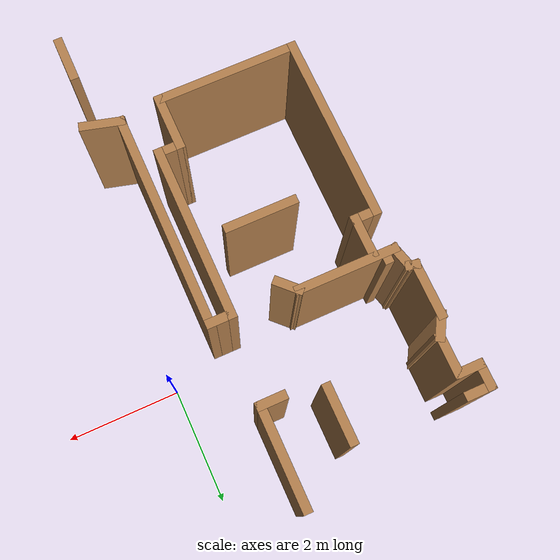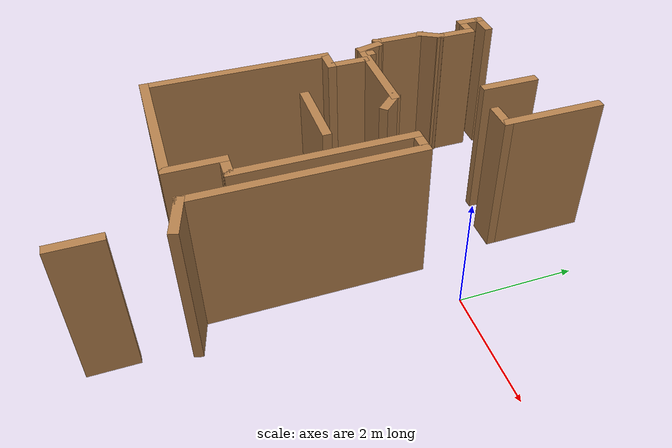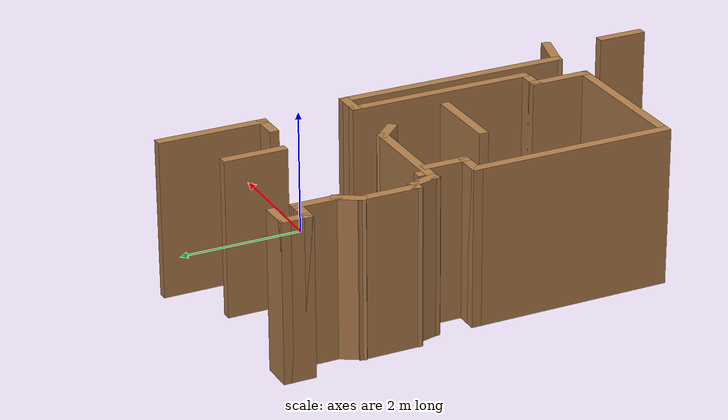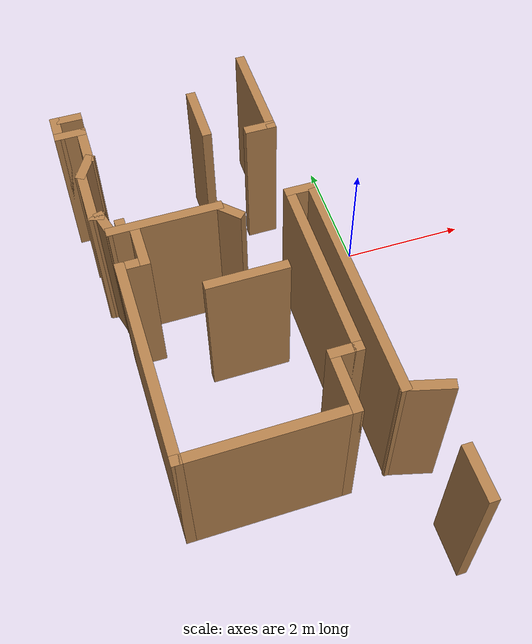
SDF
<sdf version="1.6">
 <model name="map_30">
  <link name="Wall_162">
   <pose>-1.09494 1.86618 0 0 0 -1.5708</pose>
   <visual name="Wall_162_Visual">
    <pose>0 0 1.25 0 -0 0</pose>
    <geometry><box><size>1.75 0.15 2.5</size></box></geometry>
    <material>
     <script><uri>file://media/materials/scripts/gazebo.material</uri><name>Gazebo/Wood</name></script>
     <ambient>1 1 1 1</ambient>
     <shader type="pixel"/>
    </material>
    <meta><layer>0</layer></meta>
   </visual>
   <collision name="Wall_162_Collision">
    <pose>0 0 1.25 0 -0 0</pose>
    <geometry><box><size>1.75 0.15 2.5</size></box></geometry>
    <surface>
     <friction>
      <ode><mu>1</mu><mu2>1</mu2><fdir1>0 0 0</fdir1><slip1>0</slip1><slip2>0</slip2></ode>
      <torsional>
       <coefficient>1</coefficient>
       <patch_radius>0</patch_radius>
       <surface_radius>0</surface_radius>
       <use_patch_radius>1</use_patch_radius>
       <ode><slip>0</slip></ode>
      </torsional>
     </friction>
     <bounce><restitution_coefficient>0</restitution_coefficient><threshold>1e+06</threshold></bounce>
     <contact>
      <collide_without_contact>0</collide_without_contact>
      <collide_without_contact_bitmask>1</collide_without_contact_bitmask>
      <collide_bitmask>1</collide_bitmask>
      <ode>
       <soft_cfm>0</soft_cfm>
       <soft_erp>0.2</soft_erp>
       <kp>1e+13</kp>
       <kd>1</kd>
       <max_vel>0.01</max_vel>
       <min_depth>0</min_depth>
      </ode>
      <bullet>
       <split_impulse>1</split_impulse>
       <split_impulse_penetration_threshold>-0.01</split_impulse_penetration_threshold>
       <soft_cfm>0</soft_cfm>
       <soft_erp>0.2</soft_erp>
       <kp>1e+13</kp>
       <kd>1</kd>
      </bullet>
     </contact>
    </surface>
   </collision>
  </link>
  <link name="Wall_163">
   <pose>-1.26994 1.06618 0 0 -0 3.14159</pose>
   <visual name="Wall_163_Visual">
    <pose>0 0 1.25 0 -0 0</pose>
    <geometry><box><size>0.5 0.15 2.5</size></box></geometry>
    <material>
     <script><uri>file://media/materials/scripts/gazebo.material</uri><name>Gazebo/Wood</name></script>
     <ambient>1 1 1 1</ambient>
     <shader type="pixel"/>
    </material>
    <meta><layer>0</layer></meta>
   </visual>
   <collision name="Wall_163_Collision">
    <pose>0 0 1.25 0 -0 0</pose>
    <geometry><box><size>0.5 0.15 2.5</size></box></geometry>
    <surface>
     <friction>
      <ode><mu>1</mu><mu2>1</mu2><fdir1>0 0 0</fdir1><slip1>0</slip1><slip2>0</slip2></ode>
      <torsional>
       <coefficient>1</coefficient>
       <patch_radius>0</patch_radius>
       <surface_radius>0</surface_radius>
       <use_patch_radius>1</use_patch_radius>
       <ode><slip>0</slip></ode>
      </torsional>
     </friction>
     <bounce><restitution_coefficient>0</restitution_coefficient><threshold>1e+06</threshold></bounce>
     <contact>
      <collide_without_contact>0</collide_without_contact>
      <collide_without_contact_bitmask>1</collide_without_contact_bitmask>
      <collide_bitmask>1</collide_bitmask>
      <ode>
       <soft_cfm>0</soft_cfm>
       <soft_erp>0.2</soft_erp>
       <kp>1e+13</kp>
       <kd>1</kd>
       <max_vel>0.01</max_vel>
       <min_depth>0</min_depth>
      </ode>
      <bullet>
       <split_impulse>1</split_impulse>
       <split_impulse_penetration_threshold>-0.01</split_impulse_penetration_threshold>
       <soft_cfm>0</soft_cfm>
       <soft_erp>0.2</soft_erp>
       <kp>1e+13</kp>
       <kd>1</kd>
      </bullet>
     </contact>
    </surface>
   </collision>
  </link>
  <link name="Wall_187">
   <pose>-2.10506 1.64815 0 0 -0 1.5708</pose>
   <visual name="Wall_187_Visual">
    <pose>0 0 1.25 0 -0 0</pose>
    <geometry><box><size>1 0.15 2.5</size></box></geometry>
    <material>
     <script><uri>file://media/materials/scripts/gazebo.material</uri><name>Gazebo/Wood</name></script>
     <ambient>1 1 1 1</ambient>
     <shader type="pixel"/>
    </material>
    <meta><layer>0</layer></meta>
   </visual>
   <collision name="Wall_187_Collision">
    <pose>0 0 1.25 0 -0 0</pose>
    <geometry><box><size>1 0.15 2.5</size></box></geometry>
    <surface>
     <friction>
      <ode><mu>1</mu><mu2>1</mu2><fdir1>0 0 0</fdir1><slip1>0</slip1><slip2>0</slip2></ode>
      <torsional>
       <coefficient>1</coefficient>
       <patch_radius>0</patch_radius>
       <surface_radius>0</surface_radius>
       <use_patch_radius>1</use_patch_radius>
       <ode><slip>0</slip></ode>
      </torsional>
     </friction>
     <bounce><restitution_coefficient>0</restitution_coefficient><threshold>1e+06</threshold></bounce>
     <contact>
      <collide_without_contact>0</collide_without_contact>
      <collide_without_contact_bitmask>1</collide_without_contact_bitmask>
      <collide_bitmask>1</collide_bitmask>
      <ode>
       <soft_cfm>0</soft_cfm>
       <soft_erp>0.2</soft_erp>
       <kp>1e+13</kp>
       <kd>1</kd>
       <max_vel>0.01</max_vel>
       <min_depth>0</min_depth>
      </ode>
      <bullet>
       <split_impulse>1</split_impulse>
       <split_impulse_penetration_threshold>-0.01</split_impulse_penetration_threshold>
       <soft_cfm>0</soft_cfm>
       <soft_erp>0.2</soft_erp>
       <kp>1e+13</kp>
       <kd>1</kd>
      </bullet>
     </contact>
    </surface>
   </collision>
  </link>
  <link name="Wall_189">
   <pose>-2.30374 -1.6337 0 0 -0 3.14159</pose>
   <visual name="Wall_189_Visual">
    <pose>0 0 1.25 0 -0 0</pose>
    <geometry><box><size>1.25 0.15 2.5</size></box></geometry>
    <material>
     <script><uri>file://media/materials/scripts/gazebo.material</uri><name>Gazebo/Wood</name></script>
     <ambient>1 1 1 1</ambient>
     <shader type="pixel"/>
    </material>
    <meta><layer>0</layer></meta>
   </visual>
   <collision name="Wall_189_Collision">
    <pose>0 0 1.25 0 -0 0</pose>
    <geometry><box><size>1.25 0.15 2.5</size></box></geometry>
    <surface>
     <friction>
      <ode><mu>1</mu><mu2>1</mu2><fdir1>0 0 0</fdir1><slip1>0</slip1><slip2>0</slip2></ode>
      <torsional>
       <coefficient>1</coefficient>
       <patch_radius>0</patch_radius>
       <surface_radius>0</surface_radius>
       <use_patch_radius>1</use_patch_radius>
       <ode><slip>0</slip></ode>
      </torsional>
     </friction>
     <bounce><restitution_coefficient>0</restitution_coefficient><threshold>1e+06</threshold></bounce>
     <contact>
      <collide_without_contact>0</collide_without_contact>
      <collide_without_contact_bitmask>1</collide_without_contact_bitmask>
      <collide_bitmask>1</collide_bitmask>
      <ode>
       <soft_cfm>0</soft_cfm>
       <soft_erp>0.2</soft_erp>
       <kp>1e+13</kp>
       <kd>1</kd>
       <max_vel>0.01</max_vel>
       <min_depth>0</min_depth>
      </ode>
      <bullet>
       <split_impulse>1</split_impulse>
       <split_impulse_penetration_threshold>-0.01</split_impulse_penetration_threshold>
       <soft_cfm>0</soft_cfm>
       <soft_erp>0.2</soft_erp>
       <kp>1e+13</kp>
       <kd>1</kd>
      </bullet>
     </contact>
    </surface>
   </collision>
  </link>
  <link name="Wall_26">
   <pose>-4.13006 2.17315 0 0 -0 3.14159</pose>
   <visual name="Wall_26_Visual">
    <pose>0 0 1.25 0 -0 0</pose>
    <geometry><box><size>0.5 0.15 2.5</size></box></geometry>
    <material>
     <script><uri>file://media/materials/scripts/gazebo.material</uri><name>Gazebo/Wood</name></script>
     <ambient>1 1 1 1</ambient>
     <shader type="pixel"/>
    </material>
    <meta><layer>0</layer></meta>
   </visual>
   <collision name="Wall_26_Collision">
    <pose>0 0 1.25 0 -0 0</pose>
    <geometry><box><size>0.5 0.15 2.5</size></box></geometry>
    <surface>
     <friction>
      <ode><mu>1</mu><mu2>1</mu2><fdir1>0 0 0</fdir1><slip1>0</slip1><slip2>0</slip2></ode>
      <torsional>
       <coefficient>1</coefficient>
       <patch_radius>0</patch_radius>
       <surface_radius>0</surface_radius>
       <use_patch_radius>1</use_patch_radius>
       <ode><slip>0</slip></ode>
      </torsional>
     </friction>
     <bounce><restitution_coefficient>0</restitution_coefficient><threshold>1e+06</threshold></bounce>
     <contact>
      <collide_without_contact>0</collide_without_contact>
      <collide_without_contact_bitmask>1</collide_without_contact_bitmask>
      <collide_bitmask>1</collide_bitmask>
      <ode>
       <soft_cfm>0</soft_cfm>
       <soft_erp>0.2</soft_erp>
       <kp>1e+13</kp>
       <kd>1</kd>
       <max_vel>0.01</max_vel>
       <min_depth>0</min_depth>
      </ode>
      <bullet>
       <split_impulse>1</split_impulse>
       <split_impulse_penetration_threshold>-0.01</split_impulse_penetration_threshold>
       <soft_cfm>0</soft_cfm>
       <soft_erp>0.2</soft_erp>
       <kp>1e+13</kp>
       <kd>1</kd>
      </bullet>
     </contact>
    </surface>
   </collision>
  </link>
  <link name="Wall_27">
   <pose>-4.30506 1.99815 0 0 0 -1.5708</pose>
   <visual name="Wall_27_Visual">
    <pose>0 0 1.25 0 -0 0</pose>
    <geometry><box><size>0.5 0.15 2.5</size></box></geometry>
    <material>
     <script><uri>file://media/materials/scripts/gazebo.material</uri><name>Gazebo/Wood</name></script>
     <ambient>1 1 1 1</ambient>
     <shader type="pixel"/>
    </material>
    <meta><layer>0</layer></meta>
   </visual>
   <collision name="Wall_27_Collision">
    <pose>0 0 1.25 0 -0 0</pose>
    <geometry><box><size>0.5 0.15 2.5</size></box></geometry>
    <surface>
     <friction>
      <ode><mu>1</mu><mu2>1</mu2><fdir1>0 0 0</fdir1><slip1>0</slip1><slip2>0</slip2></ode>
      <torsional>
       <coefficient>1</coefficient>
       <patch_radius>0</patch_radius>
       <surface_radius>0</surface_radius>
       <use_patch_radius>1</use_patch_radius>
       <ode><slip>0</slip></ode>
      </torsional>
     </friction>
     <bounce><restitution_coefficient>0</restitution_coefficient><threshold>1e+06</threshold></bounce>
     <contact>
      <collide_without_contact>0</collide_without_contact>
      <collide_without_contact_bitmask>1</collide_without_contact_bitmask>
      <collide_bitmask>1</collide_bitmask>
      <ode>
       <soft_cfm>0</soft_cfm>
       <soft_erp>0.2</soft_erp>
       <kp>1e+13</kp>
       <kd>1</kd>
       <max_vel>0.01</max_vel>
       <min_depth>0</min_depth>
      </ode>
      <bullet>
       <split_impulse>1</split_impulse>
       <split_impulse_penetration_threshold>-0.01</split_impulse_penetration_threshold>
       <soft_cfm>0</soft_cfm>
       <soft_erp>0.2</soft_erp>
       <kp>1e+13</kp>
       <kd>1</kd>
      </bullet>
     </contact>
    </surface>
   </collision>
  </link>
  <link name="Wall_28">
   <pose>-4.13006 1.82315 0 0 -0 0</pose>
   <visual name="Wall_28_Visual">
    <pose>0 0 1.25 0 -0 0</pose>
    <geometry><box><size>0.5 0.15 2.5</size></box></geometry>
    <material>
     <script><uri>file://media/materials/scripts/gazebo.material</uri><name>Gazebo/Wood</name></script>
     <ambient>1 1 1 1</ambient>
     <shader type="pixel"/>
    </material>
    <meta><layer>0</layer></meta>
   </visual>
   <collision name="Wall_28_Collision">
    <pose>0 0 1.25 0 -0 0</pose>
    <geometry><box><size>0.5 0.15 2.5</size></box></geometry>
    <surface>
     <friction>
      <ode><mu>1</mu><mu2>1</mu2><fdir1>0 0 0</fdir1><slip1>0</slip1><slip2>0</slip2></ode>
      <torsional>
       <coefficient>1</coefficient>
       <patch_radius>0</patch_radius>
       <surface_radius>0</surface_radius>
       <use_patch_radius>1</use_patch_radius>
       <ode><slip>0</slip></ode>
      </torsional>
     </friction>
     <bounce><restitution_coefficient>0</restitution_coefficient><threshold>1e+06</threshold></bounce>
     <contact>
      <collide_without_contact>0</collide_without_contact>
      <collide_without_contact_bitmask>1</collide_without_contact_bitmask>
      <collide_bitmask>1</collide_bitmask>
      <ode>
       <soft_cfm>0</soft_cfm>
       <soft_erp>0.2</soft_erp>
       <kp>1e+13</kp>
       <kd>1</kd>
       <max_vel>0.01</max_vel>
       <min_depth>0</min_depth>
      </ode>
      <bullet>
       <split_impulse>1</split_impulse>
       <split_impulse_penetration_threshold>-0.01</split_impulse_penetration_threshold>
       <soft_cfm>0</soft_cfm>
       <soft_erp>0.2</soft_erp>
       <kp>1e+13</kp>
       <kd>1</kd>
      </bullet>
     </contact>
    </surface>
   </collision>
  </link>
  <link name="Wall_29">
   <pose>-3.95506 1.52315 0 0 0 -1.5708</pose>
   <visual name="Wall_29_Visual">
    <pose>0 0 1.25 0 -0 0</pose>
    <geometry><box><size>0.75 0.15 2.5</size></box></geometry>
    <material>
     <script><uri>file://media/materials/scripts/gazebo.material</uri><name>Gazebo/Wood</name></script>
     <ambient>1 1 1 1</ambient>
     <shader type="pixel"/>
    </material>
    <meta><layer>0</layer></meta>
   </visual>
   <collision name="Wall_29_Collision">
    <pose>0 0 1.25 0 -0 0</pose>
    <geometry><box><size>0.75 0.15 2.5</size></box></geometry>
    <surface>
     <friction>
      <ode><mu>1</mu><mu2>1</mu2><fdir1>0 0 0</fdir1><slip1>0</slip1><slip2>0</slip2></ode>
      <torsional>
       <coefficient>1</coefficient>
       <patch_radius>0</patch_radius>
       <surface_radius>0</surface_radius>
       <use_patch_radius>1</use_patch_radius>
       <ode><slip>0</slip></ode>
      </torsional>
     </friction>
     <bounce><restitution_coefficient>0</restitution_coefficient><threshold>1e+06</threshold></bounce>
     <contact>
      <collide_without_contact>0</collide_without_contact>
      <collide_without_contact_bitmask>1</collide_without_contact_bitmask>
      <collide_bitmask>1</collide_bitmask>
      <ode>
       <soft_cfm>0</soft_cfm>
       <soft_erp>0.2</soft_erp>
       <kp>1e+13</kp>
       <kd>1</kd>
       <max_vel>0.01</max_vel>
       <min_depth>0</min_depth>
      </ode>
      <bullet>
       <split_impulse>1</split_impulse>
       <split_impulse_penetration_threshold>-0.01</split_impulse_penetration_threshold>
       <soft_cfm>0</soft_cfm>
       <soft_erp>0.2</soft_erp>
       <kp>1e+13</kp>
       <kd>1</kd>
      </bullet>
     </contact>
    </surface>
   </collision>
  </link>
  <link name="Wall_30">
   <pose>-4.04256 1.07159 0 0 0 -2.0944</pose>
   <visual name="Wall_30_Visual">
    <pose>0 0 1.25 0 -0 0</pose>
    <geometry><box><size>0.5 0.15 2.5</size></box></geometry>
    <material>
     <script><uri>file://media/materials/scripts/gazebo.material</uri><name>Gazebo/Wood</name></script>
     <ambient>1 1 1 1</ambient>
     <shader type="pixel"/>
    </material>
    <meta><layer>0</layer></meta>
   </visual>
   <collision name="Wall_30_Collision">
    <pose>0 0 1.25 0 -0 0</pose>
    <geometry><box><size>0.5 0.15 2.5</size></box></geometry>
    <surface>
     <friction>
      <ode><mu>1</mu><mu2>1</mu2><fdir1>0 0 0</fdir1><slip1>0</slip1><slip2>0</slip2></ode>
      <torsional>
       <coefficient>1</coefficient>
       <patch_radius>0</patch_radius>
       <surface_radius>0</surface_radius>
       <use_patch_radius>1</use_patch_radius>
       <ode><slip>0</slip></ode>
      </torsional>
     </friction>
     <bounce><restitution_coefficient>0</restitution_coefficient><threshold>1e+06</threshold></bounce>
     <contact>
      <collide_without_contact>0</collide_without_contact>
      <collide_without_contact_bitmask>1</collide_without_contact_bitmask>
      <collide_bitmask>1</collide_bitmask>
      <ode>
       <soft_cfm>0</soft_cfm>
       <soft_erp>0.2</soft_erp>
       <kp>1e+13</kp>
       <kd>1</kd>
       <max_vel>0.01</max_vel>
       <min_depth>0</min_depth>
      </ode>
      <bullet>
       <split_impulse>1</split_impulse>
       <split_impulse_penetration_threshold>-0.01</split_impulse_penetration_threshold>
       <soft_cfm>0</soft_cfm>
       <soft_erp>0.2</soft_erp>
       <kp>1e+13</kp>
       <kd>1</kd>
      </bullet>
     </contact>
    </surface>
   </collision>
  </link>
  <link name="Wall_33">
   <pose>-3.78006 -0.179962 0 0 -0 0</pose>
   <visual name="Wall_33_Visual">
    <pose>0 0 1.25 0 -0 0</pose>
    <geometry><box><size>0.15 0.15 2.5</size></box></geometry>
    <material>
     <script><uri>file://media/materials/scripts/gazebo.material</uri><name>Gazebo/Wood</name></script>
     <ambient>1 1 1 1</ambient>
     <shader type="pixel"/>
    </material>
    <meta><layer>0</layer></meta>
   </visual>
   <collision name="Wall_33_Collision">
    <pose>0 0 1.25 0 -0 0</pose>
    <geometry><box><size>0.15 0.15 2.5</size></box></geometry>
    <surface>
     <friction>
      <ode><mu>1</mu><mu2>1</mu2><fdir1>0 0 0</fdir1><slip1>0</slip1><slip2>0</slip2></ode>
      <torsional>
       <coefficient>1</coefficient>
       <patch_radius>0</patch_radius>
       <surface_radius>0</surface_radius>
       <use_patch_radius>1</use_patch_radius>
       <ode><slip>0</slip></ode>
      </torsional>
     </friction>
     <bounce><restitution_coefficient>0</restitution_coefficient><threshold>1e+06</threshold></bounce>
     <contact>
      <collide_without_contact>0</collide_without_contact>
      <collide_without_contact_bitmask>1</collide_without_contact_bitmask>
      <collide_bitmask>1</collide_bitmask>
      <ode>
       <soft_cfm>0</soft_cfm>
       <soft_erp>0.2</soft_erp>
       <kp>1e+13</kp>
       <kd>1</kd>
       <max_vel>0.01</max_vel>
       <min_depth>0</min_depth>
      </ode>
      <bullet>
       <split_impulse>1</split_impulse>
       <split_impulse_penetration_threshold>-0.01</split_impulse_penetration_threshold>
       <soft_cfm>0</soft_cfm>
       <soft_erp>0.2</soft_erp>
       <kp>1e+13</kp>
       <kd>1</kd>
      </bullet>
     </contact>
    </surface>
   </collision>
  </link>
  <link name="Wall_35">
   <pose>-4.13006 0.495038 0 0 0 -1.5708</pose>
   <visual name="Wall_35_Visual">
    <pose>0 0 1.25 0 -0 0</pose>
    <geometry><box><size>1 0.15 2.5</size></box></geometry>
    <material>
     <script><uri>file://media/materials/scripts/gazebo.material</uri><name>Gazebo/Wood</name></script>
     <ambient>1 1 1 1</ambient>
     <shader type="pixel"/>
    </material>
    <meta><layer>0</layer></meta>
   </visual>
   <collision name="Wall_35_Collision">
    <pose>0 0 1.25 0 -0 0</pose>
    <geometry><box><size>1 0.15 2.5</size></box></geometry>
    <surface>
     <friction>
      <ode><mu>1</mu><mu2>1</mu2><fdir1>0 0 0</fdir1><slip1>0</slip1><slip2>0</slip2></ode>
      <torsional>
       <coefficient>1</coefficient>
       <patch_radius>0</patch_radius>
       <surface_radius>0</surface_radius>
       <use_patch_radius>1</use_patch_radius>
       <ode><slip>0</slip></ode>
      </torsional>
     </friction>
     <bounce><restitution_coefficient>0</restitution_coefficient><threshold>1e+06</threshold></bounce>
     <contact>
      <collide_without_contact>0</collide_without_contact>
      <collide_without_contact_bitmask>1</collide_without_contact_bitmask>
      <collide_bitmask>1</collide_bitmask>
      <ode>
       <soft_cfm>0</soft_cfm>
       <soft_erp>0.2</soft_erp>
       <kp>1e+13</kp>
       <kd>1</kd>
       <max_vel>0.01</max_vel>
       <min_depth>0</min_depth>
      </ode>
      <bullet>
       <split_impulse>1</split_impulse>
       <split_impulse_penetration_threshold>-0.01</split_impulse_penetration_threshold>
       <soft_cfm>0</soft_cfm>
       <soft_erp>0.2</soft_erp>
       <kp>1e+13</kp>
       <kd>1</kd>
      </bullet>
     </contact>
    </surface>
   </collision>
  </link>
  <link name="Wall_36">
   <pose>-4.08176 0.057097 0 0 0 -0.261799</pose>
   <visual name="Wall_36_Visual">
    <pose>0 0 1.25 0 -0 0</pose>
    <geometry><box><size>0.25 0.15 2.5</size></box></geometry>
    <material>
     <script><uri>file://media/materials/scripts/gazebo.material</uri><name>Gazebo/Wood</name></script>
     <ambient>1 1 1 1</ambient>
     <shader type="pixel"/>
    </material>
    <meta><layer>0</layer></meta>
   </visual>
   <collision name="Wall_36_Collision">
    <pose>0 0 1.25 0 -0 0</pose>
    <geometry><box><size>0.25 0.15 2.5</size></box></geometry>
    <surface>
     <friction>
      <ode><mu>1</mu><mu2>1</mu2><fdir1>0 0 0</fdir1><slip1>0</slip1><slip2>0</slip2></ode>
      <torsional>
       <coefficient>1</coefficient>
       <patch_radius>0</patch_radius>
       <surface_radius>0</surface_radius>
       <use_patch_radius>1</use_patch_radius>
       <ode><slip>0</slip></ode>
      </torsional>
     </friction>
     <bounce><restitution_coefficient>0</restitution_coefficient><threshold>1e+06</threshold></bounce>
     <contact>
      <collide_without_contact>0</collide_without_contact>
      <collide_without_contact_bitmask>1</collide_without_contact_bitmask>
      <collide_bitmask>1</collide_bitmask>
      <ode>
       <soft_cfm>0</soft_cfm>
       <soft_erp>0.2</soft_erp>
       <kp>1e+13</kp>
       <kd>1</kd>
       <max_vel>0.01</max_vel>
       <min_depth>0</min_depth>
      </ode>
      <bullet>
       <split_impulse>1</split_impulse>
       <split_impulse_penetration_threshold>-0.01</split_impulse_penetration_threshold>
       <soft_cfm>0</soft_cfm>
       <soft_erp>0.2</soft_erp>
       <kp>1e+13</kp>
       <kd>1</kd>
      </bullet>
     </contact>
    </surface>
   </collision>
  </link>
  <link name="Wall_37">
   <pose>-3.98817 -0.124881 0 0 0 -1.309</pose>
   <visual name="Wall_37_Visual">
    <pose>0 0 1.25 0 -0 0</pose>
    <geometry><box><size>0.5 0.15 2.5</size></box></geometry>
    <material>
     <script><uri>file://media/materials/scripts/gazebo.material</uri><name>Gazebo/Wood</name></script>
     <ambient>1 1 1 1</ambient>
     <shader type="pixel"/>
    </material>
    <meta><layer>0</layer></meta>
   </visual>
   <collision name="Wall_37_Collision">
    <pose>0 0 1.25 0 -0 0</pose>
    <geometry><box><size>0.5 0.15 2.5</size></box></geometry>
    <surface>
     <friction>
      <ode><mu>1</mu><mu2>1</mu2><fdir1>0 0 0</fdir1><slip1>0</slip1><slip2>0</slip2></ode>
      <torsional>
       <coefficient>1</coefficient>
       <patch_radius>0</patch_radius>
       <surface_radius>0</surface_radius>
       <use_patch_radius>1</use_patch_radius>
       <ode><slip>0</slip></ode>
      </torsional>
     </friction>
     <bounce><restitution_coefficient>0</restitution_coefficient><threshold>1e+06</threshold></bounce>
     <contact>
      <collide_without_contact>0</collide_without_contact>
      <collide_without_contact_bitmask>1</collide_without_contact_bitmask>
      <collide_bitmask>1</collide_bitmask>
      <ode>
       <soft_cfm>0</soft_cfm>
       <soft_erp>0.2</soft_erp>
       <kp>1e+13</kp>
       <kd>1</kd>
       <max_vel>0.01</max_vel>
       <min_depth>0</min_depth>
      </ode>
      <bullet>
       <split_impulse>1</split_impulse>
       <split_impulse_penetration_threshold>-0.01</split_impulse_penetration_threshold>
       <soft_cfm>0</soft_cfm>
       <soft_erp>0.2</soft_erp>
       <kp>1e+13</kp>
       <kd>1</kd>
      </bullet>
     </contact>
    </surface>
   </collision>
  </link>
  <link name="Wall_38">
   <pose>-3.14288 -0.293918 0 0 -0 0</pose>
   <visual name="Wall_38_Visual">
    <pose>0 0 1.25 0 -0 0</pose>
    <geometry><box><size>1.75 0.15 2.5</size></box></geometry>
    <material>
     <script><uri>file://media/materials/scripts/gazebo.material</uri><name>Gazebo/Wood</name></script>
     <ambient>1 1 1 1</ambient>
     <shader type="pixel"/>
    </material>
    <meta><layer>0</layer></meta>
   </visual>
   <collision name="Wall_38_Collision">
    <pose>0 0 1.25 0 -0 0</pose>
    <geometry><box><size>1.75 0.15 2.5</size></box></geometry>
    <surface>
     <friction>
      <ode><mu>1</mu><mu2>1</mu2><fdir1>0 0 0</fdir1><slip1>0</slip1><slip2>0</slip2></ode>
      <torsional>
       <coefficient>1</coefficient>
       <patch_radius>0</patch_radius>
       <surface_radius>0</surface_radius>
       <use_patch_radius>1</use_patch_radius>
       <ode><slip>0</slip></ode>
      </torsional>
     </friction>
     <bounce><restitution_coefficient>0</restitution_coefficient><threshold>1e+06</threshold></bounce>
     <contact>
      <collide_without_contact>0</collide_without_contact>
      <collide_without_contact_bitmask>1</collide_without_contact_bitmask>
      <collide_bitmask>1</collide_bitmask>
      <ode>
       <soft_cfm>0</soft_cfm>
       <soft_erp>0.2</soft_erp>
       <kp>1e+13</kp>
       <kd>1</kd>
       <max_vel>0.01</max_vel>
       <min_depth>0</min_depth>
      </ode>
      <bullet>
       <split_impulse>1</split_impulse>
       <split_impulse_penetration_threshold>-0.01</split_impulse_penetration_threshold>
       <soft_cfm>0</soft_cfm>
       <soft_erp>0.2</soft_erp>
       <kp>1e+13</kp>
       <kd>1</kd>
      </bullet>
     </contact>
    </surface>
   </collision>
  </link>
  <link name="Wall_39">
   <pose>-2.21914 -0.417661 0 0 0 -0.785398</pose>
   <visual name="Wall_39_Visual">
    <pose>0 0 1.25 0 -0 0</pose>
    <geometry><box><size>0.5 0.15 2.5</size></box></geometry>
    <material>
     <script><uri>file://media/materials/scripts/gazebo.material</uri><name>Gazebo/Wood</name></script>
     <ambient>1 1 1 1</ambient>
     <shader type="pixel"/>
    </material>
    <meta><layer>0</layer></meta>
   </visual>
   <collision name="Wall_39_Collision">
    <pose>0 0 1.25 0 -0 0</pose>
    <geometry><box><size>0.5 0.15 2.5</size></box></geometry>
    <surface>
     <friction>
      <ode><mu>1</mu><mu2>1</mu2><fdir1>0 0 0</fdir1><slip1>0</slip1><slip2>0</slip2></ode>
      <torsional>
       <coefficient>1</coefficient>
       <patch_radius>0</patch_radius>
       <surface_radius>0</surface_radius>
       <use_patch_radius>1</use_patch_radius>
       <ode><slip>0</slip></ode>
      </torsional>
     </friction>
     <bounce><restitution_coefficient>0</restitution_coefficient><threshold>1e+06</threshold></bounce>
     <contact>
      <collide_without_contact>0</collide_without_contact>
      <collide_without_contact_bitmask>1</collide_without_contact_bitmask>
      <collide_bitmask>1</collide_bitmask>
      <ode>
       <soft_cfm>0</soft_cfm>
       <soft_erp>0.2</soft_erp>
       <kp>1e+13</kp>
       <kd>1</kd>
       <max_vel>0.01</max_vel>
       <min_depth>0</min_depth>
      </ode>
      <bullet>
       <split_impulse>1</split_impulse>
       <split_impulse_penetration_threshold>-0.01</split_impulse_penetration_threshold>
       <soft_cfm>0</soft_cfm>
       <soft_erp>0.2</soft_erp>
       <kp>1e+13</kp>
       <kd>1</kd>
      </bullet>
     </contact>
    </surface>
   </collision>
  </link>
  <link name="Wall_42">
   <pose>-3.60419 -0.661521 0 0 0 -1.5708</pose>
   <visual name="Wall_42_Visual">
    <pose>0 0 1.25 0 -0 0</pose>
    <geometry><box><size>0.75 0.15 2.5</size></box></geometry>
    <material>
     <script><uri>file://media/materials/scripts/gazebo.material</uri><name>Gazebo/Wood</name></script>
     <ambient>1 1 1 1</ambient>
     <shader type="pixel"/>
    </material>
    <meta><layer>0</layer></meta>
   </visual>
   <collision name="Wall_42_Collision">
    <pose>0 0 1.25 0 -0 0</pose>
    <geometry><box><size>0.75 0.15 2.5</size></box></geometry>
    <surface>
     <friction>
      <ode><mu>1</mu><mu2>1</mu2><fdir1>0 0 0</fdir1><slip1>0</slip1><slip2>0</slip2></ode>
      <torsional>
       <coefficient>1</coefficient>
       <patch_radius>0</patch_radius>
       <surface_radius>0</surface_radius>
       <use_patch_radius>1</use_patch_radius>
       <ode><slip>0</slip></ode>
      </torsional>
     </friction>
     <bounce><restitution_coefficient>0</restitution_coefficient><threshold>1e+06</threshold></bounce>
     <contact>
      <collide_without_contact>0</collide_without_contact>
      <collide_without_contact_bitmask>1</collide_without_contact_bitmask>
      <collide_bitmask>1</collide_bitmask>
      <ode>
       <soft_cfm>0</soft_cfm>
       <soft_erp>0.2</soft_erp>
       <kp>1e+13</kp>
       <kd>1</kd>
       <max_vel>0.01</max_vel>
       <min_depth>0</min_depth>
      </ode>
      <bullet>
       <split_impulse>1</split_impulse>
       <split_impulse_penetration_threshold>-0.01</split_impulse_penetration_threshold>
       <soft_cfm>0</soft_cfm>
       <soft_erp>0.2</soft_erp>
       <kp>1e+13</kp>
       <kd>1</kd>
      </bullet>
     </contact>
    </surface>
   </collision>
  </link>
  <link name="Wall_43">
   <pose>-3.77919 -0.961521 0 0 -0 3.14159</pose>
   <visual name="Wall_43_Visual">
    <pose>0 0 1.25 0 -0 0</pose>
    <geometry><box><size>0.5 0.15 2.5</size></box></geometry>
    <material>
     <script><uri>file://media/materials/scripts/gazebo.material</uri><name>Gazebo/Wood</name></script>
     <ambient>1 1 1 1</ambient>
     <shader type="pixel"/>
    </material>
    <meta><layer>0</layer></meta>
   </visual>
   <collision name="Wall_43_Collision">
    <pose>0 0 1.25 0 -0 0</pose>
    <geometry><box><size>0.5 0.15 2.5</size></box></geometry>
    <surface>
     <friction>
      <ode><mu>1</mu><mu2>1</mu2><fdir1>0 0 0</fdir1><slip1>0</slip1><slip2>0</slip2></ode>
      <torsional>
       <coefficient>1</coefficient>
       <patch_radius>0</patch_radius>
       <surface_radius>0</surface_radius>
       <use_patch_radius>1</use_patch_radius>
       <ode><slip>0</slip></ode>
      </torsional>
     </friction>
     <bounce><restitution_coefficient>0</restitution_coefficient><threshold>1e+06</threshold></bounce>
     <contact>
      <collide_without_contact>0</collide_without_contact>
      <collide_without_contact_bitmask>1</collide_without_contact_bitmask>
      <collide_bitmask>1</collide_bitmask>
      <ode>
       <soft_cfm>0</soft_cfm>
       <soft_erp>0.2</soft_erp>
       <kp>1e+13</kp>
       <kd>1</kd>
       <max_vel>0.01</max_vel>
       <min_depth>0</min_depth>
      </ode>
      <bullet>
       <split_impulse>1</split_impulse>
       <split_impulse_penetration_threshold>-0.01</split_impulse_penetration_threshold>
       <soft_cfm>0</soft_cfm>
       <soft_erp>0.2</soft_erp>
       <kp>1e+13</kp>
       <kd>1</kd>
      </bullet>
     </contact>
    </surface>
   </collision>
  </link>
  <link name="Wall_44">
   <pose>-3.95419 -2.51152 0 0 0 -1.5708</pose>
   <visual name="Wall_44_Visual">
    <pose>0 0 1.25 0 -0 0</pose>
    <geometry><box><size>3.25 0.15 2.5</size></box></geometry>
    <material>
     <script><uri>file://media/materials/scripts/gazebo.material</uri><name>Gazebo/Wood</name></script>
     <ambient>1 1 1 1</ambient>
     <shader type="pixel"/>
    </material>
    <meta><layer>0</layer></meta>
   </visual>
   <collision name="Wall_44_Collision">
    <pose>0 0 1.25 0 -0 0</pose>
    <geometry><box><size>3.25 0.15 2.5</size></box></geometry>
    <surface>
     <friction>
      <ode><mu>1</mu><mu2>1</mu2><fdir1>0 0 0</fdir1><slip1>0</slip1><slip2>0</slip2></ode>
      <torsional>
       <coefficient>1</coefficient>
       <patch_radius>0</patch_radius>
       <surface_radius>0</surface_radius>
       <use_patch_radius>1</use_patch_radius>
       <ode><slip>0</slip></ode>
      </torsional>
     </friction>
     <bounce><restitution_coefficient>0</restitution_coefficient><threshold>1e+06</threshold></bounce>
     <contact>
      <collide_without_contact>0</collide_without_contact>
      <collide_without_contact_bitmask>1</collide_without_contact_bitmask>
      <collide_bitmask>1</collide_bitmask>
      <ode>
       <soft_cfm>0</soft_cfm>
       <soft_erp>0.2</soft_erp>
       <kp>1e+13</kp>
       <kd>1</kd>
       <max_vel>0.01</max_vel>
       <min_depth>0</min_depth>
      </ode>
      <bullet>
       <split_impulse>1</split_impulse>
       <split_impulse_penetration_threshold>-0.01</split_impulse_penetration_threshold>
       <soft_cfm>0</soft_cfm>
       <soft_erp>0.2</soft_erp>
       <kp>1e+13</kp>
       <kd>1</kd>
      </bullet>
     </contact>
    </surface>
   </collision>
  </link>
  <link name="Wall_47">
   <pose>-2.77919 -4.06152 0 0 -0 0</pose>
   <visual name="Wall_47_Visual">
    <pose>0 0 1.25 0 -0 0</pose>
    <geometry><box><size>2.5 0.15 2.5</size></box></geometry>
    <material>
     <script><uri>file://media/materials/scripts/gazebo.material</uri><name>Gazebo/Wood</name></script>
     <ambient>1 1 1 1</ambient>
     <shader type="pixel"/>
    </material>
    <meta><layer>0</layer></meta>
   </visual>
   <collision name="Wall_47_Collision">
    <pose>0 0 1.25 0 -0 0</pose>
    <geometry><box><size>2.5 0.15 2.5</size></box></geometry>
    <surface>
     <friction>
      <ode><mu>1</mu><mu2>1</mu2><fdir1>0 0 0</fdir1><slip1>0</slip1><slip2>0</slip2></ode>
      <torsional>
       <coefficient>1</coefficient>
       <patch_radius>0</patch_radius>
       <surface_radius>0</surface_radius>
       <use_patch_radius>1</use_patch_radius>
       <ode><slip>0</slip></ode>
      </torsional>
     </friction>
     <bounce><restitution_coefficient>0</restitution_coefficient><threshold>1e+06</threshold></bounce>
     <contact>
      <collide_without_contact>0</collide_without_contact>
      <collide_without_contact_bitmask>1</collide_without_contact_bitmask>
      <collide_bitmask>1</collide_bitmask>
      <ode>
       <soft_cfm>0</soft_cfm>
       <soft_erp>0.2</soft_erp>
       <kp>1e+13</kp>
       <kd>1</kd>
       <max_vel>0.01</max_vel>
       <min_depth>0</min_depth>
      </ode>
      <bullet>
       <split_impulse>1</split_impulse>
       <split_impulse_penetration_threshold>-0.01</split_impulse_penetration_threshold>
       <soft_cfm>0</soft_cfm>
       <soft_erp>0.2</soft_erp>
       <kp>1e+13</kp>
       <kd>1</kd>
      </bullet>
     </contact>
    </surface>
   </collision>
  </link>
  <link name="Wall_48">
   <pose>-1.60419 -3.63652 0 0 -0 1.5708</pose>
   <visual name="Wall_48_Visual">
    <pose>0 0 1.25 0 -0 0</pose>
    <geometry><box><size>1 0.15 2.5</size></box></geometry>
    <material>
     <script><uri>file://media/materials/scripts/gazebo.material</uri><name>Gazebo/Wood</name></script>
     <ambient>1 1 1 1</ambient>
     <shader type="pixel"/>
    </material>
    <meta><layer>0</layer></meta>
   </visual>
   <collision name="Wall_48_Collision">
    <pose>0 0 1.25 0 -0 0</pose>
    <geometry><box><size>1 0.15 2.5</size></box></geometry>
    <surface>
     <friction>
      <ode><mu>1</mu><mu2>1</mu2><fdir1>0 0 0</fdir1><slip1>0</slip1><slip2>0</slip2></ode>
      <torsional>
       <coefficient>1</coefficient>
       <patch_radius>0</patch_radius>
       <surface_radius>0</surface_radius>
       <use_patch_radius>1</use_patch_radius>
       <ode><slip>0</slip></ode>
      </torsional>
     </friction>
     <bounce><restitution_coefficient>0</restitution_coefficient><threshold>1e+06</threshold></bounce>
     <contact>
      <collide_without_contact>0</collide_without_contact>
      <collide_without_contact_bitmask>1</collide_without_contact_bitmask>
      <collide_bitmask>1</collide_bitmask>
      <ode>
       <soft_cfm>0</soft_cfm>
       <soft_erp>0.2</soft_erp>
       <kp>1e+13</kp>
       <kd>1</kd>
       <max_vel>0.01</max_vel>
       <min_depth>0</min_depth>
      </ode>
      <bullet>
       <split_impulse>1</split_impulse>
       <split_impulse_penetration_threshold>-0.01</split_impulse_penetration_threshold>
       <soft_cfm>0</soft_cfm>
       <soft_erp>0.2</soft_erp>
       <kp>1e+13</kp>
       <kd>1</kd>
      </bullet>
     </contact>
    </surface>
   </collision>
  </link>
  <link name="Wall_49">
   <pose>-1.42919 -3.21152 0 0 -0 0</pose>
   <visual name="Wall_49_Visual">
    <pose>0 0 1.25 0 -0 0</pose>
    <geometry><box><size>0.5 0.15 2.5</size></box></geometry>
    <material>
     <script><uri>file://media/materials/scripts/gazebo.material</uri><name>Gazebo/Wood</name></script>
     <ambient>1 1 1 1</ambient>
     <shader type="pixel"/>
    </material>
    <meta><layer>0</layer></meta>
   </visual>
   <collision name="Wall_49_Collision">
    <pose>0 0 1.25 0 -0 0</pose>
    <geometry><box><size>0.5 0.15 2.5</size></box></geometry>
    <surface>
     <friction>
      <ode><mu>1</mu><mu2>1</mu2><fdir1>0 0 0</fdir1><slip1>0</slip1><slip2>0</slip2></ode>
      <torsional>
       <coefficient>1</coefficient>
       <patch_radius>0</patch_radius>
       <surface_radius>0</surface_radius>
       <use_patch_radius>1</use_patch_radius>
       <ode><slip>0</slip></ode>
      </torsional>
     </friction>
     <bounce><restitution_coefficient>0</restitution_coefficient><threshold>1e+06</threshold></bounce>
     <contact>
      <collide_without_contact>0</collide_without_contact>
      <collide_without_contact_bitmask>1</collide_without_contact_bitmask>
      <collide_bitmask>1</collide_bitmask>
      <ode>
       <soft_cfm>0</soft_cfm>
       <soft_erp>0.2</soft_erp>
       <kp>1e+13</kp>
       <kd>1</kd>
       <max_vel>0.01</max_vel>
       <min_depth>0</min_depth>
      </ode>
      <bullet>
       <split_impulse>1</split_impulse>
       <split_impulse_penetration_threshold>-0.01</split_impulse_penetration_threshold>
       <soft_cfm>0</soft_cfm>
       <soft_erp>0.2</soft_erp>
       <kp>1e+13</kp>
       <kd>1</kd>
      </bullet>
     </contact>
    </surface>
   </collision>
  </link>
  <link name="Wall_50">
   <pose>-1.25419 -1.78652 0 0 -0 1.5708</pose>
   <visual name="Wall_50_Visual">
    <pose>0 0 1.25 0 -0 0</pose>
    <geometry><box><size>3 0.15 2.5</size></box></geometry>
    <material>
     <script><uri>file://media/materials/scripts/gazebo.material</uri><name>Gazebo/Wood</name></script>
     <ambient>1 1 1 1</ambient>
     <shader type="pixel"/>
    </material>
    <meta><layer>0</layer></meta>
   </visual>
   <collision name="Wall_50_Collision">
    <pose>0 0 1.25 0 -0 0</pose>
    <geometry><box><size>3 0.15 2.5</size></box></geometry>
    <surface>
     <friction>
      <ode><mu>1</mu><mu2>1</mu2><fdir1>0 0 0</fdir1><slip1>0</slip1><slip2>0</slip2></ode>
      <torsional>
       <coefficient>1</coefficient>
       <patch_radius>0</patch_radius>
       <surface_radius>0</surface_radius>
       <use_patch_radius>1</use_patch_radius>
       <ode><slip>0</slip></ode>
      </torsional>
     </friction>
     <bounce><restitution_coefficient>0</restitution_coefficient><threshold>1e+06</threshold></bounce>
     <contact>
      <collide_without_contact>0</collide_without_contact>
      <collide_without_contact_bitmask>1</collide_without_contact_bitmask>
      <collide_bitmask>1</collide_bitmask>
      <ode>
       <soft_cfm>0</soft_cfm>
       <soft_erp>0.2</soft_erp>
       <kp>1e+13</kp>
       <kd>1</kd>
       <max_vel>0.01</max_vel>
       <min_depth>0</min_depth>
      </ode>
      <bullet>
       <split_impulse>1</split_impulse>
       <split_impulse_penetration_threshold>-0.01</split_impulse_penetration_threshold>
       <soft_cfm>0</soft_cfm>
       <soft_erp>0.2</soft_erp>
       <kp>1e+13</kp>
       <kd>1</kd>
      </bullet>
     </contact>
    </surface>
   </collision>
  </link>
  <link name="Wall_53">
   <pose>-1.07919 -0.361521 0 0 -0 0</pose>
   <visual name="Wall_53_Visual">
    <pose>0 0 1.25 0 -0 0</pose>
    <geometry><box><size>0.5 0.15 2.5</size></box></geometry>
    <material>
     <script><uri>file://media/materials/scripts/gazebo.material</uri><name>Gazebo/Wood</name></script>
     <ambient>1 1 1 1</ambient>
     <shader type="pixel"/>
    </material>
    <meta><layer>0</layer></meta>
   </visual>
   <collision name="Wall_53_Collision">
    <pose>0 0 1.25 0 -0 0</pose>
    <geometry><box><size>0.5 0.15 2.5</size></box></geometry>
    <surface>
     <friction>
      <ode><mu>1</mu><mu2>1</mu2><fdir1>0 0 0</fdir1><slip1>0</slip1><slip2>0</slip2></ode>
      <torsional>
       <coefficient>1</coefficient>
       <patch_radius>0</patch_radius>
       <surface_radius>0</surface_radius>
       <use_patch_radius>1</use_patch_radius>
       <ode><slip>0</slip></ode>
      </torsional>
     </friction>
     <bounce><restitution_coefficient>0</restitution_coefficient><threshold>1e+06</threshold></bounce>
     <contact>
      <collide_without_contact>0</collide_without_contact>
      <collide_without_contact_bitmask>1</collide_without_contact_bitmask>
      <collide_bitmask>1</collide_bitmask>
      <ode>
       <soft_cfm>0</soft_cfm>
       <soft_erp>0.2</soft_erp>
       <kp>1e+13</kp>
       <kd>1</kd>
       <max_vel>0.01</max_vel>
       <min_depth>0</min_depth>
      </ode>
      <bullet>
       <split_impulse>1</split_impulse>
       <split_impulse_penetration_threshold>-0.01</split_impulse_penetration_threshold>
       <soft_cfm>0</soft_cfm>
       <soft_erp>0.2</soft_erp>
       <kp>1e+13</kp>
       <kd>1</kd>
      </bullet>
     </contact>
    </surface>
   </collision>
  </link>
  <link name="Wall_54">
   <pose>-0.904189 -2.16152 0 0 0 -1.5708</pose>
   <visual name="Wall_54_Visual">
    <pose>0 0 1.25 0 -0 0</pose>
    <geometry><box><size>3.75 0.15 2.5</size></box></geometry>
    <material>
     <script><uri>file://media/materials/scripts/gazebo.material</uri><name>Gazebo/Wood</name></script>
     <ambient>1 1 1 1</ambient>
     <shader type="pixel"/>
    </material>
    <meta><layer>0</layer></meta>
   </visual>
   <collision name="Wall_54_Collision">
    <pose>0 0 1.25 0 -0 0</pose>
    <geometry><box><size>3.75 0.15 2.5</size></box></geometry>
    <surface>
     <friction>
      <ode><mu>1</mu><mu2>1</mu2><fdir1>0 0 0</fdir1><slip1>0</slip1><slip2>0</slip2></ode>
      <torsional>
       <coefficient>1</coefficient>
       <patch_radius>0</patch_radius>
       <surface_radius>0</surface_radius>
       <use_patch_radius>1</use_patch_radius>
       <ode><slip>0</slip></ode>
      </torsional>
     </friction>
     <bounce><restitution_coefficient>0</restitution_coefficient><threshold>1e+06</threshold></bounce>
     <contact>
      <collide_without_contact>0</collide_without_contact>
      <collide_without_contact_bitmask>1</collide_without_contact_bitmask>
      <collide_bitmask>1</collide_bitmask>
      <ode>
       <soft_cfm>0</soft_cfm>
       <soft_erp>0.2</soft_erp>
       <kp>1e+13</kp>
       <kd>1</kd>
       <max_vel>0.01</max_vel>
       <min_depth>0</min_depth>
      </ode>
      <bullet>
       <split_impulse>1</split_impulse>
       <split_impulse_penetration_threshold>-0.01</split_impulse_penetration_threshold>
       <soft_cfm>0</soft_cfm>
       <soft_erp>0.2</soft_erp>
       <kp>1e+13</kp>
       <kd>1</kd>
      </bullet>
     </contact>
    </surface>
   </collision>
  </link>
  <link name="Wall_55">
   <pose>-0.614412 -4.03917 0 0 0 -0.261799</pose>
   <visual name="Wall_55_Visual">
    <pose>0 0 1.25 0 -0 0</pose>
    <geometry><box><size>0.75 0.15 2.5</size></box></geometry>
    <material>
     <script><uri>file://media/materials/scripts/gazebo.material</uri><name>Gazebo/Wood</name></script>
     <ambient>1 1 1 1</ambient>
     <shader type="pixel"/>
    </material>
    <meta><layer>0</layer></meta>
   </visual>
   <collision name="Wall_55_Collision">
    <pose>0 0 1.25 0 -0 0</pose>
    <geometry><box><size>0.75 0.15 2.5</size></box></geometry>
    <surface>
     <friction>
      <ode><mu>1</mu><mu2>1</mu2><fdir1>0 0 0</fdir1><slip1>0</slip1><slip2>0</slip2></ode>
      <torsional>
       <coefficient>1</coefficient>
       <patch_radius>0</patch_radius>
       <surface_radius>0</surface_radius>
       <use_patch_radius>1</use_patch_radius>
       <ode><slip>0</slip></ode>
      </torsional>
     </friction>
     <bounce><restitution_coefficient>0</restitution_coefficient><threshold>1e+06</threshold></bounce>
     <contact>
      <collide_without_contact>0</collide_without_contact>
      <collide_without_contact_bitmask>1</collide_without_contact_bitmask>
      <collide_bitmask>1</collide_bitmask>
      <ode>
       <soft_cfm>0</soft_cfm>
       <soft_erp>0.2</soft_erp>
       <kp>1e+13</kp>
       <kd>1</kd>
       <max_vel>0.01</max_vel>
       <min_depth>0</min_depth>
      </ode>
      <bullet>
       <split_impulse>1</split_impulse>
       <split_impulse_penetration_threshold>-0.01</split_impulse_penetration_threshold>
       <soft_cfm>0</soft_cfm>
       <soft_erp>0.2</soft_erp>
       <kp>1e+13</kp>
       <kd>1</kd>
      </bullet>
     </contact>
    </surface>
   </collision>
  </link>
  <link name="Wall_60">
   <pose>-0.499634 -5.34305 0 0 0 -1.5708</pose>
   <visual name="Wall_60_Visual">
    <pose>0 0 1.25 0 -0 0</pose>
    <geometry><box><size>0.796261 0.15 2.5</size></box></geometry>
    <material>
     <script><uri>file://media/materials/scripts/gazebo.material</uri><name>Gazebo/Wood</name></script>
     <ambient>1 1 1 1</ambient>
     <shader type="pixel"/>
    </material>
    <meta><layer>0</layer></meta>
   </visual>
   <collision name="Wall_60_Collision">
    <pose>0 0 1.25 0 -0 0</pose>
    <geometry><box><size>0.796261 0.15 2.5</size></box></geometry>
    <surface>
     <friction>
      <ode><mu>1</mu><mu2>1</mu2><fdir1>0 0 0</fdir1><slip1>0</slip1><slip2>0</slip2></ode>
      <torsional>
       <coefficient>1</coefficient>
       <patch_radius>0</patch_radius>
       <surface_radius>0</surface_radius>
       <use_patch_radius>1</use_patch_radius>
       <ode><slip>0</slip></ode>
      </torsional>
     </friction>
     <bounce><restitution_coefficient>0</restitution_coefficient><threshold>1e+06</threshold></bounce>
     <contact>
      <collide_without_contact>0</collide_without_contact>
      <collide_without_contact_bitmask>1</collide_without_contact_bitmask>
      <collide_bitmask>1</collide_bitmask>
      <ode>
       <soft_cfm>0</soft_cfm>
       <soft_erp>0.2</soft_erp>
       <kp>1e+13</kp>
       <kd>1</kd>
       <max_vel>0.01</max_vel>
       <min_depth>0</min_depth>
      </ode>
      <bullet>
       <split_impulse>1</split_impulse>
       <split_impulse_penetration_threshold>-0.01</split_impulse_penetration_threshold>
       <soft_cfm>0</soft_cfm>
       <soft_erp>0.2</soft_erp>
       <kp>1e+13</kp>
       <kd>1</kd>
      </bullet>
     </contact>
    </surface>
   </collision>
  </link>
  <static>1</static>
 </model>
</sdf>
